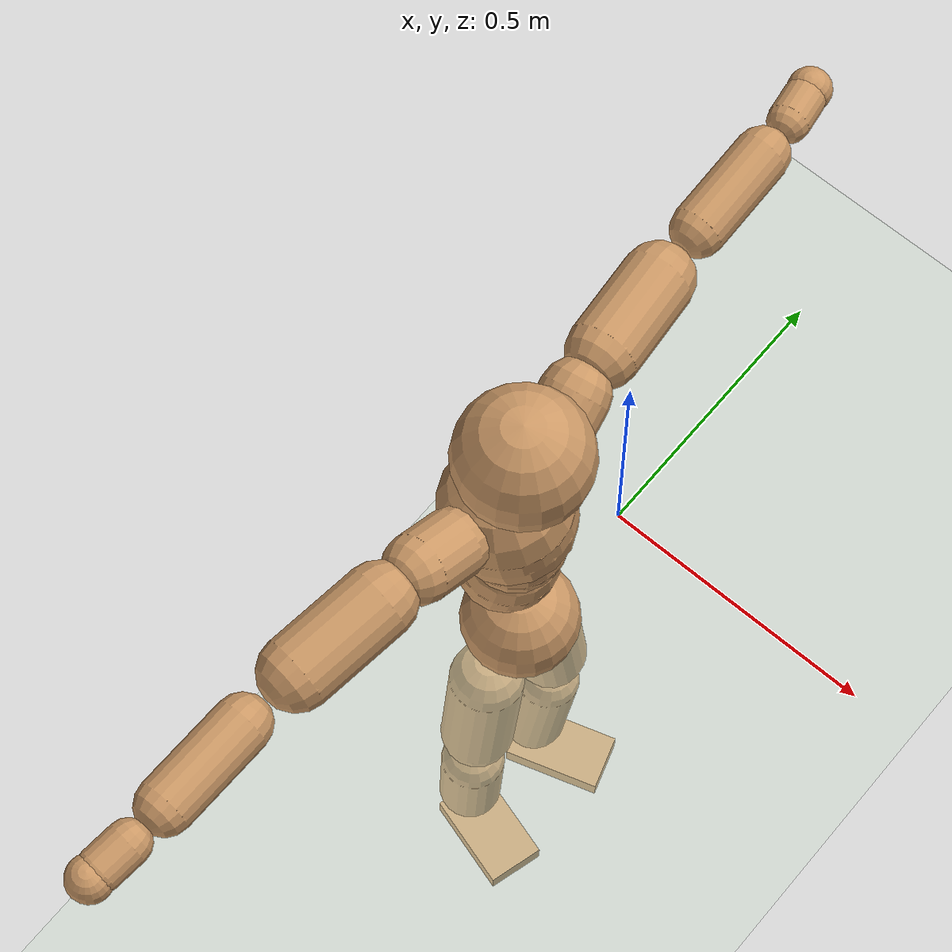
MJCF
<mujoco model="humanoid">
  <compiler coordinate="local"/>
  <default>
    <joint damping="0.0" armature="0.01" stiffness="0.0" limited="true"/>
    <geom conaffinity="1" condim="3" contype="7" margin="0.001" rgba="0.8 0.6 .4 1"/>
  </default>
  <asset>
    <texture type="skybox" builtin="gradient" rgb1=".4 .5 .6" rgb2="0 0 0" width="100" height="100"/>
    <texture builtin="flat" height="1278" mark="cross" markrgb="1 1 1" name="texgeom" random="0.01" rgb1="0.8 0.6 0.4" rgb2="0.8 0.6 0.4" type="cube" width="127"/>
    <texture builtin="checker" height="100" name="texplane" rgb1="0 0 0" rgb2="0.8 0.8 0.8" type="2d" width="100"/>
    <material name="MatPlane" reflectance="0.5" shininess="1" specular="1" texrepeat="60 60" texture="texplane"/>
    <material name="geom" texture="texgeom" texuniform="true"/>
  </asset>
  <worldbody>
    <light cutoff="100" diffuse="1 1 1" dir="-0 0 -1.3" directional="true" exponent="1" pos="0 0 1.3" specular=".1 .1 .1"/>
    <geom conaffinity="1" condim="3" name="floor" pos="0 0 0" rgba="0.8 0.9 0.8 1" size="100 100 .2" type="plane" material="MatPlane"/>
    <body name="Pelvis" pos="-0.003 -0.2565 0.0361">
      <freejoint name="Pelvis"/>
      <geom type="sphere" contype="1" conaffinity="1" density="500" size="0.1015" pos="0.0000 0.0000 0.0000" name="Pelvis"/>
      <body name="L_Hip" pos="-0.0161 0.0619 -0.0847">
        <joint name="L_Hip_x" type="hinge" pos="0 0 0" axis="1 0 0" stiffness="800" damping="80" armature="0.02" range="-180.0000 180.0000"/>
        <joint name="L_Hip_y" type="hinge" pos="0 0 0" axis="0 1 0" stiffness="800" damping="80" armature="0.02" range="-180.0000 180.0000"/>
        <joint name="L_Hip_z" type="hinge" pos="0 0 0" axis="0 0 1" stiffness="800" damping="80" armature="0.02" range="-180.0000 180.0000"/>
        <geom type="capsule" contype="1" conaffinity="1" density="500" fromto="0.0017 0.0088 -0.0783 0.0067 0.0352 -0.3131" size="0.0658" name="L_Hip"/>
        <body name="L_Knee" pos="0.0084 0.044 -0.3914">
          <joint name="L_Knee_x" type="hinge" pos="0 0 0" axis="1 0 0" stiffness="800" damping="80" armature="0.02" range="-180.0000 180.0000"/>
          <joint name="L_Knee_y" type="hinge" pos="0 0 0" axis="0 1 0" stiffness="800" damping="80" armature="0.02" range="-180.0000 180.0000"/>
          <joint name="L_Knee_z" type="hinge" pos="0 0 0" axis="0 0 1" stiffness="800" damping="80" armature="0.02" range="-180.0000 180.0000"/>
          <geom type="capsule" contype="1" conaffinity="1" density="500" fromto="-0.0078 -0.0032 -0.0880 -0.0314 -0.0126 -0.3519" size="0.0583" name="L_Knee"/>
          <body name="L_Ankle" pos="-0.0392 -0.0158 -0.4398">
            <joint name="L_Ankle_x" type="hinge" pos="0 0 0" axis="1 0 0" stiffness="800" damping="80" armature="0.02" range="-180.0000 180.0000"/>
            <joint name="L_Ankle_y" type="hinge" pos="0 0 0" axis="0 1 0" stiffness="800" damping="80" armature="0.02" range="-180.0000 180.0000"/>
            <joint name="L_Ankle_z" type="hinge" pos="0 0 0" axis="0 0 1" stiffness="800" damping="80" armature="0.02" range="-180.0000 180.0000"/>
            <geom type="box" contype="1" conaffinity="1" density="500" pos="0.0634 0.0199 -0.0311" size="0.0932 0.053 0.0226" quat="0.9885 0.0000 0.0000 0.1513" name="L_Ankle"/>
            <body name="L_Toe" pos="0.1267 0.0397 -0.0622">
              <joint name="L_Toe_x" type="hinge" pos="0 0 0" axis="1 0 0" stiffness="500" damping="50" armature="0.02" range="-180.0000 180.0000"/>
              <joint name="L_Toe_y" type="hinge" pos="0 0 0" axis="0 1 0" stiffness="500" damping="50" armature="0.02" range="-180.0000 180.0000"/>
              <joint name="L_Toe_z" type="hinge" pos="0 0 0" axis="0 0 1" stiffness="500" damping="50" armature="0.02" range="-180.0000 180.0000"/>
              <geom type="box" contype="1" conaffinity="1" density="500" pos="0.0000 0.0000 0.0301" size="0.0011 0.0026 0.0011" quat="0.9878 0.0000 0.0000 0.1560" name="L_Toe"/>
            </body>
          </body>
        </body>
      </body>
      <body name="R_Hip" pos="-0.0123 -0.0632 -0.0924">
        <joint name="R_Hip_x" type="hinge" pos="0 0 0" axis="1 0 0" stiffness="800" damping="80" armature="0.02" range="-180.0000 180.0000"/>
        <joint name="R_Hip_y" type="hinge" pos="0 0 0" axis="0 1 0" stiffness="800" damping="80" armature="0.02" range="-180.0000 180.0000"/>
        <joint name="R_Hip_z" type="hinge" pos="0 0 0" axis="0 0 1" stiffness="800" damping="80" armature="0.02" range="-180.0000 180.0000"/>
        <geom type="capsule" contype="1" conaffinity="1" density="500" fromto="-0.0009 -0.0086 -0.0782 -0.0037 -0.0346 -0.3129" size="0.0652" name="R_Hip"/>
        <body name="R_Knee" pos="-0.0046 -0.0432 -0.3911">
          <joint name="R_Knee_x" type="hinge" pos="0 0 0" axis="1 0 0" stiffness="800" damping="80" armature="0.02" range="-180.0000 180.0000"/>
          <joint name="R_Knee_y" type="hinge" pos="0 0 0" axis="0 1 0" stiffness="800" damping="80" armature="0.02" range="-180.0000 180.0000"/>
          <joint name="R_Knee_z" type="hinge" pos="0 0 0" axis="0 0 1" stiffness="800" damping="80" armature="0.02" range="-180.0000 180.0000"/>
          <geom type="capsule" contype="1" conaffinity="1" density="500" fromto="-0.0072 0.0040 -0.0867 -0.0288 0.0160 -0.3470" size="0.0581" name="R_Knee"/>
          <body name="R_Ankle" pos="-0.036 0.02 -0.4337">
            <joint name="R_Ankle_x" type="hinge" pos="0 0 0" axis="1 0 0" stiffness="800" damping="80" armature="0.02" range="-180.0000 180.0000"/>
            <joint name="R_Ankle_y" type="hinge" pos="0 0 0" axis="0 1 0" stiffness="800" damping="80" armature="0.02" range="-180.0000 180.0000"/>
            <joint name="R_Ankle_z" type="hinge" pos="0 0 0" axis="0 0 1" stiffness="800" damping="80" armature="0.02" range="-180.0000 180.0000"/>
            <geom type="box" contype="1" conaffinity="1" density="500" pos="0.0671 -0.0193 -0.0320" size="0.093 0.054 0.0223" quat="0.9902 0.0000 0.0000 -0.1395" name="R_Ankle"/>
            <body name="R_Toe" pos="0.1343 -0.0386 -0.064">
              <joint name="R_Toe_x" type="hinge" pos="0 0 0" axis="1 0 0" stiffness="500" damping="50" armature="0.02" range="-180.0000 180.0000"/>
              <joint name="R_Toe_y" type="hinge" pos="0 0 0" axis="0 1 0" stiffness="500" damping="50" armature="0.02" range="-180.0000 180.0000"/>
              <joint name="R_Toe_z" type="hinge" pos="0 0 0" axis="0 0 1" stiffness="500" damping="50" armature="0.02" range="-180.0000 180.0000"/>
              <geom type="box" contype="1" conaffinity="1" density="500" pos="0.0000 0.0000 0.0317" size="0.0011 0.0026 0.0011" quat="0.9914 0.0000 0.0000 -0.1308" name="R_Toe"/>
            </body>
          </body>
        </body>
      </body>
      <body name="Torso" pos="-0.0448 0.0045 0.1285">
        <joint name="Torso_x" type="hinge" pos="0 0 0" axis="1 0 0" stiffness="1000" damping="100" armature="0.02" range="-180.0000 180.0000"/>
        <joint name="Torso_y" type="hinge" pos="0 0 0" axis="0 1 0" stiffness="1000" damping="100" armature="0.02" range="-180.0000 180.0000"/>
        <joint name="Torso_z" type="hinge" pos="0 0 0" axis="0 0 1" stiffness="1000" damping="100" armature="0.02" range="-180.0000 180.0000"/>
        <geom type="capsule" contype="1" conaffinity="1" density="500" fromto="0.0154 0.0029 0.0866 0.0103 0.0019 0.0577" size="0.0848" name="Torso"/>
        <body name="Spine" pos="0.0257 0.0048 0.1444">
          <joint name="Spine_x" type="hinge" pos="0 0 0" axis="1 0 0" stiffness="1000" damping="100" armature="0.02" range="-180.0000 180.0000"/>
          <joint name="Spine_y" type="hinge" pos="0 0 0" axis="0 1 0" stiffness="1000" damping="100" armature="0.02" range="-180.0000 180.0000"/>
          <joint name="Spine_z" type="hinge" pos="0 0 0" axis="0 0 1" stiffness="1000" damping="100" armature="0.02" range="-180.0000 180.0000"/>
          <geom type="capsule" contype="1" conaffinity="1" density="500" fromto="0.0020 -0.0013 0.0356 0.0013 -0.0009 0.0237" size="0.0841" name="Spine"/>
          <body name="Chest" pos="0.0033 -0.0022 0.0594">
            <joint name="Chest_x" type="hinge" pos="0 0 0" axis="1 0 0" stiffness="1000" damping="100" armature="0.02" range="-180.0000 180.0000"/>
            <joint name="Chest_y" type="hinge" pos="0 0 0" axis="0 1 0" stiffness="1000" damping="100" armature="0.02" range="-180.0000 180.0000"/>
            <joint name="Chest_z" type="hinge" pos="0 0 0" axis="0 0 1" stiffness="1000" damping="100" armature="0.02" range="-180.0000 180.0000"/>
            <geom type="capsule" contype="1" conaffinity="1" density="500" fromto="-0.0163 -0.0051 0.0936 -0.0109 -0.0034 0.0624" size="0.1089" name="Chest"/>
            <body name="Neck" pos="-0.0378 -0.0141 0.2282">
              <joint name="Neck_x" type="hinge" pos="0 0 0" axis="1 0 0" stiffness="500" damping="50" armature="0.02" range="-180.0000 180.0000"/>
              <joint name="Neck_y" type="hinge" pos="0 0 0" axis="0 1 0" stiffness="500" damping="50" armature="0.02" range="-180.0000 180.0000"/>
              <joint name="Neck_z" type="hinge" pos="0 0 0" axis="0 0 1" stiffness="500" damping="50" armature="0.02" range="-180.0000 180.0000"/>
              <geom type="capsule" contype="1" conaffinity="1" density="500" fromto="0.0106 0.0022 0.0188 0.0425 0.0088 0.0750" size="0.0479" name="Neck"/>
              <body name="Head" pos="0.0531 0.011 0.0938">
                <joint name="Head_x" type="hinge" pos="0 0 0" axis="1 0 0" stiffness="500" damping="50" armature="0.02" range="-180.0000 180.0000"/>
                <joint name="Head_y" type="hinge" pos="0 0 0" axis="0 1 0" stiffness="500" damping="50" armature="0.02" range="-180.0000 180.0000"/>
                <joint name="Head_z" type="hinge" pos="0 0 0" axis="0 0 1" stiffness="500" damping="50" armature="0.02" range="-180.0000 180.0000"/>
                <geom type="sphere" contype="1" conaffinity="1" density="500" size="0.1093" pos="0.0000 0.0000 0.0000" name="Head"/>
              </body>
            </body>
            <body name="L_Thorax" pos="-0.0186 0.0772 0.1212">
              <joint name="L_Thorax_x" type="hinge" pos="0 0 0" axis="1 0 0" stiffness="500" damping="50" armature="0.02" range="-180.0000 180.0000"/>
              <joint name="L_Thorax_y" type="hinge" pos="0 0 0" axis="0 1 0" stiffness="500" damping="50" armature="0.02" range="-180.0000 180.0000"/>
              <joint name="L_Thorax_z" type="hinge" pos="0 0 0" axis="0 0 1" stiffness="500" damping="50" armature="0.02" range="-180.0000 180.0000"/>
              <geom type="capsule" contype="1" conaffinity="1" density="500" fromto="-0.0044 0.0264 0.0096 -0.0176 0.1056 0.0382" size="0.0576" name="L_Thorax"/>
              <body name="L_Shoulder" pos="-0.022 0.132 0.0478">
                <joint name="L_Shoulder_x" type="hinge" pos="0 0 0" axis="1 0 0" stiffness="500" damping="50" armature="0.02" range="-720.0000 720.0000"/>
                <joint name="L_Shoulder_y" type="hinge" pos="0 0 0" axis="0 1 0" stiffness="500" damping="50" armature="0.02" range="-720.0000 720.0000"/>
                <joint name="L_Shoulder_z" type="hinge" pos="0 0 0" axis="0 0 1" stiffness="500" damping="50" armature="0.02" range="-720.0000 720.0000"/>
                <geom type="capsule" contype="1" conaffinity="1" density="500" fromto="-0.0054 0.0519 -0.0034 -0.0216 0.2074 -0.0135" size="0.0604" name="L_Shoulder"/>
                <body name="L_Elbow" pos="-0.027 0.2593 -0.0169">
                  <joint name="L_Elbow_x" type="hinge" pos="0 0 0" axis="1 0 0" stiffness="500" damping="50" armature="0.02" range="-720.0000 720.0000"/>
                  <joint name="L_Elbow_y" type="hinge" pos="0 0 0" axis="0 1 0" stiffness="500" damping="50" armature="0.02" range="-720.0000 720.0000"/>
                  <joint name="L_Elbow_z" type="hinge" pos="0 0 0" axis="0 0 1" stiffness="500" damping="50" armature="0.02" range="-720.0000 720.0000"/>
                  <geom type="capsule" contype="1" conaffinity="1" density="500" fromto="-0.0009 0.0547 0.0030 -0.0037 0.2189 0.0120" size="0.0461" name="L_Elbow"/>
                  <body name="L_Wrist" pos="-0.0046 0.2737 0.0149">
                    <joint name="L_Wrist_x" type="hinge" pos="0 0 0" axis="1 0 0" stiffness="300" damping="30" armature="0.02" range="-180.0000 180.0000"/>
                    <joint name="L_Wrist_y" type="hinge" pos="0 0 0" axis="0 1 0" stiffness="300" damping="30" armature="0.02" range="-180.0000 180.0000"/>
                    <joint name="L_Wrist_z" type="hinge" pos="0 0 0" axis="0 0 1" stiffness="300" damping="30" armature="0.02" range="-180.0000 180.0000"/>
                    <geom type="capsule" contype="1" conaffinity="1" density="500" fromto="-0.0032 0.0181 -0.0023 -0.0128 0.0723 -0.0090" size="0.0358" name="L_Wrist"/>
                    <body name="L_Hand" pos="-0.016 0.0903 -0.0113">
                      <joint name="L_Hand_x" type="hinge" pos="0 0 0" axis="1 0 0" stiffness="300" damping="30" armature="0.02" range="-180.0000 180.0000"/>
                      <joint name="L_Hand_y" type="hinge" pos="0 0 0" axis="0 1 0" stiffness="300" damping="30" armature="0.02" range="-180.0000 180.0000"/>
                      <joint name="L_Hand_z" type="hinge" pos="0 0 0" axis="0 0 1" stiffness="300" damping="30" armature="0.02" range="-180.0000 180.0000"/>
                      <geom type="sphere" contype="1" conaffinity="1" density="500" size="0.0372" pos="0.0000 0.0000 0.0000" name="L_Hand"/>
                    </body>
                  </body>
                </body>
              </body>
            </body>
            <body name="R_Thorax" pos="-0.0253 -0.0885 0.1188">
              <joint name="R_Thorax_x" type="hinge" pos="0 0 0" axis="1 0 0" stiffness="500" damping="50" armature="0.02" range="-180.0000 180.0000"/>
              <joint name="R_Thorax_y" type="hinge" pos="0 0 0" axis="0 1 0" stiffness="500" damping="50" armature="0.02" range="-180.0000 180.0000"/>
              <joint name="R_Thorax_z" type="hinge" pos="0 0 0" axis="0 0 1" stiffness="500" damping="50" armature="0.02" range="-180.0000 180.0000"/>
              <geom type="capsule" contype="1" conaffinity="1" density="500" fromto="-0.0022 -0.0243 0.0100 -0.0087 -0.0971 0.0401" size="0.0573" name="R_Thorax"/>
              <body name="R_Shoulder" pos="-0.0109 -0.1213 0.0501">
                <joint name="R_Shoulder_x" type="hinge" pos="0 0 0" axis="1 0 0" stiffness="500" damping="50" armature="0.02" range="-720.0000 720.0000"/>
                <joint name="R_Shoulder_y" type="hinge" pos="0 0 0" axis="0 1 0" stiffness="500" damping="50" armature="0.02" range="-720.0000 720.0000"/>
                <joint name="R_Shoulder_z" type="hinge" pos="0 0 0" axis="0 0 1" stiffness="500" damping="50" armature="0.02" range="-720.0000 720.0000"/>
                <geom type="capsule" contype="1" conaffinity="1" density="500" fromto="-0.0073 -0.0532 -0.0029 -0.0291 -0.2129 -0.0116" size="0.0608" name="R_Shoulder"/>
                <body name="R_Elbow" pos="-0.0364 -0.2661 -0.0146">
                  <joint name="R_Elbow_x" type="hinge" pos="0 0 0" axis="1 0 0" stiffness="500" damping="50" armature="0.02" range="-720.0000 720.0000"/>
                  <joint name="R_Elbow_y" type="hinge" pos="0 0 0" axis="0 1 0" stiffness="500" damping="50" armature="0.02" range="-720.0000 720.0000"/>
                  <joint name="R_Elbow_z" type="hinge" pos="0 0 0" axis="0 0 1" stiffness="500" damping="50" armature="0.02" range="-720.0000 720.0000"/>
                  <geom type="capsule" contype="1" conaffinity="1" density="500" fromto="-0.0009 -0.0548 0.0009 -0.0034 -0.2190 0.0037" size="0.0464" name="R_Elbow"/>
                  <body name="R_Wrist" pos="-0.0043 -0.2738 0.0047">
                    <joint name="R_Wrist_x" type="hinge" pos="0 0 0" axis="1 0 0" stiffness="300" damping="30" armature="0.02" range="-180.0000 180.0000"/>
                    <joint name="R_Wrist_y" type="hinge" pos="0 0 0" axis="0 1 0" stiffness="300" damping="30" armature="0.02" range="-180.0000 180.0000"/>
                    <joint name="R_Wrist_z" type="hinge" pos="0 0 0" axis="0 0 1" stiffness="300" damping="30" armature="0.02" range="-180.0000 180.0000"/>
                    <geom type="capsule" contype="1" conaffinity="1" density="500" fromto="-0.0021 -0.0184 -0.0018 -0.0083 -0.0735 -0.0073" size="0.0362" name="R_Wrist"/>
                    <body name="R_Hand" pos="-0.0104 -0.0918 -0.0091">
                      <joint name="R_Hand_x" type="hinge" pos="0 0 0" axis="1 0 0" stiffness="300" damping="30" armature="0.02" range="-180.0000 180.0000"/>
                      <joint name="R_Hand_y" type="hinge" pos="0 0 0" axis="0 1 0" stiffness="300" damping="30" armature="0.02" range="-180.0000 180.0000"/>
                      <joint name="R_Hand_z" type="hinge" pos="0 0 0" axis="0 0 1" stiffness="300" damping="30" armature="0.02" range="-180.0000 180.0000"/>
                      <geom type="sphere" contype="1" conaffinity="1" density="500" size="0.0374" pos="0.0000 0.0000 0.0000" name="R_Hand"/>
                    </body>
                  </body>
                </body>
              </body>
            </body>
          </body>
        </body>
      </body>
    </body>
  </worldbody>
  <actuator>
    <motor name="L_Hip_x" joint="L_Hip_x" gear="500"/>
    <motor name="L_Hip_y" joint="L_Hip_y" gear="500"/>
    <motor name="L_Hip_z" joint="L_Hip_z" gear="500"/>
    <motor name="L_Knee_x" joint="L_Knee_x" gear="500"/>
    <motor name="L_Knee_y" joint="L_Knee_y" gear="500"/>
    <motor name="L_Knee_z" joint="L_Knee_z" gear="500"/>
    <motor name="L_Ankle_x" joint="L_Ankle_x" gear="500"/>
    <motor name="L_Ankle_y" joint="L_Ankle_y" gear="500"/>
    <motor name="L_Ankle_z" joint="L_Ankle_z" gear="500"/>
    <motor name="L_Toe_x" joint="L_Toe_x" gear="500"/>
    <motor name="L_Toe_y" joint="L_Toe_y" gear="500"/>
    <motor name="L_Toe_z" joint="L_Toe_z" gear="500"/>
    <motor name="R_Hip_x" joint="R_Hip_x" gear="500"/>
    <motor name="R_Hip_y" joint="R_Hip_y" gear="500"/>
    <motor name="R_Hip_z" joint="R_Hip_z" gear="500"/>
    <motor name="R_Knee_x" joint="R_Knee_x" gear="500"/>
    <motor name="R_Knee_y" joint="R_Knee_y" gear="500"/>
    <motor name="R_Knee_z" joint="R_Knee_z" gear="500"/>
    <motor name="R_Ankle_x" joint="R_Ankle_x" gear="500"/>
    <motor name="R_Ankle_y" joint="R_Ankle_y" gear="500"/>
    <motor name="R_Ankle_z" joint="R_Ankle_z" gear="500"/>
    <motor name="R_Toe_x" joint="R_Toe_x" gear="500"/>
    <motor name="R_Toe_y" joint="R_Toe_y" gear="500"/>
    <motor name="R_Toe_z" joint="R_Toe_z" gear="500"/>
    <motor name="Torso_x" joint="Torso_x" gear="500"/>
    <motor name="Torso_y" joint="Torso_y" gear="500"/>
    <motor name="Torso_z" joint="Torso_z" gear="500"/>
    <motor name="Spine_x" joint="Spine_x" gear="500"/>
    <motor name="Spine_y" joint="Spine_y" gear="500"/>
    <motor name="Spine_z" joint="Spine_z" gear="500"/>
    <motor name="Chest_x" joint="Chest_x" gear="500"/>
    <motor name="Chest_y" joint="Chest_y" gear="500"/>
    <motor name="Chest_z" joint="Chest_z" gear="500"/>
    <motor name="Neck_x" joint="Neck_x" gear="500"/>
    <motor name="Neck_y" joint="Neck_y" gear="500"/>
    <motor name="Neck_z" joint="Neck_z" gear="500"/>
    <motor name="Head_x" joint="Head_x" gear="500"/>
    <motor name="Head_y" joint="Head_y" gear="500"/>
    <motor name="Head_z" joint="Head_z" gear="500"/>
    <motor name="L_Thorax_x" joint="L_Thorax_x" gear="500"/>
    <motor name="L_Thorax_y" joint="L_Thorax_y" gear="500"/>
    <motor name="L_Thorax_z" joint="L_Thorax_z" gear="500"/>
    <motor name="L_Shoulder_x" joint="L_Shoulder_x" gear="500"/>
    <motor name="L_Shoulder_y" joint="L_Shoulder_y" gear="500"/>
    <motor name="L_Shoulder_z" joint="L_Shoulder_z" gear="500"/>
    <motor name="L_Elbow_x" joint="L_Elbow_x" gear="500"/>
    <motor name="L_Elbow_y" joint="L_Elbow_y" gear="500"/>
    <motor name="L_Elbow_z" joint="L_Elbow_z" gear="500"/>
    <motor name="L_Wrist_x" joint="L_Wrist_x" gear="500"/>
    <motor name="L_Wrist_y" joint="L_Wrist_y" gear="500"/>
    <motor name="L_Wrist_z" joint="L_Wrist_z" gear="500"/>
    <motor name="L_Hand_x" joint="L_Hand_x" gear="500"/>
    <motor name="L_Hand_y" joint="L_Hand_y" gear="500"/>
    <motor name="L_Hand_z" joint="L_Hand_z" gear="500"/>
    <motor name="R_Thorax_x" joint="R_Thorax_x" gear="500"/>
    <motor name="R_Thorax_y" joint="R_Thorax_y" gear="500"/>
    <motor name="R_Thorax_z" joint="R_Thorax_z" gear="500"/>
    <motor name="R_Shoulder_x" joint="R_Shoulder_x" gear="500"/>
    <motor name="R_Shoulder_y" joint="R_Shoulder_y" gear="500"/>
    <motor name="R_Shoulder_z" joint="R_Shoulder_z" gear="500"/>
    <motor name="R_Elbow_x" joint="R_Elbow_x" gear="500"/>
    <motor name="R_Elbow_y" joint="R_Elbow_y" gear="500"/>
    <motor name="R_Elbow_z" joint="R_Elbow_z" gear="500"/>
    <motor name="R_Wrist_x" joint="R_Wrist_x" gear="500"/>
    <motor name="R_Wrist_y" joint="R_Wrist_y" gear="500"/>
    <motor name="R_Wrist_z" joint="R_Wrist_z" gear="500"/>
    <motor name="R_Hand_x" joint="R_Hand_x" gear="500"/>
    <motor name="R_Hand_y" joint="R_Hand_y" gear="500"/>
    <motor name="R_Hand_z" joint="R_Hand_z" gear="500"/>
  </actuator>
  <contact>
    <exclude body1="Torso" body2="Chest"/>
    <exclude body1="Head" body2="Chest"/>
    <exclude body1="R_Knee" body2="R_Toe"/>
    <exclude body1="R_Knee" body2="L_Ankle"/>
    <exclude body1="R_Knee" body2="L_Toe"/>
    <exclude body1="L_Knee" body2="L_Toe"/>
    <exclude body1="L_Knee" body2="R_Ankle"/>
    <exclude body1="L_Knee" body2="R_Toe"/>
    <exclude body1="L_Shoulder" body2="Chest"/>
    <exclude body1="R_Shoulder" body2="Chest"/>
  </contact>
  <sensor/>
  <size njmax="700" nconmax="700"/>
</mujoco>
